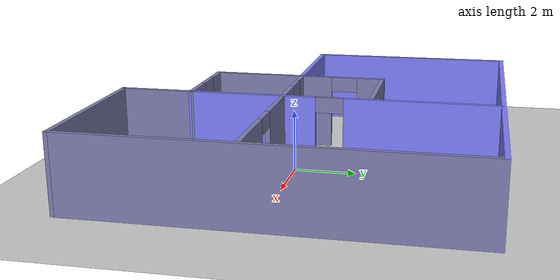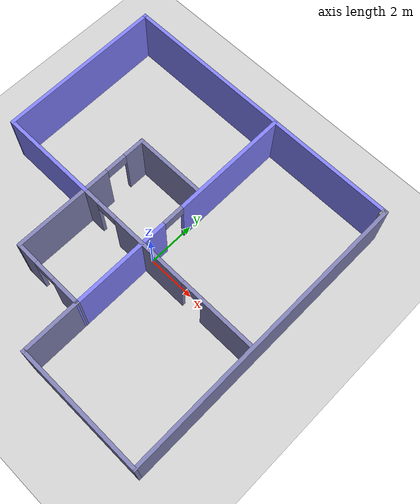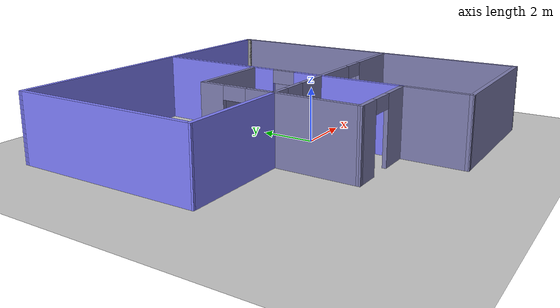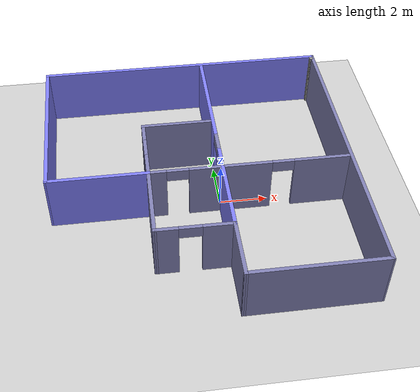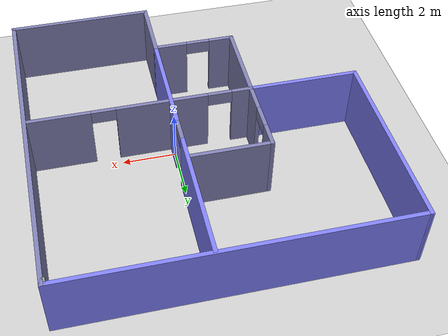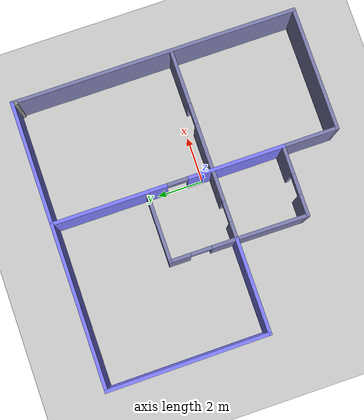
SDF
<sdf version="1.7">
 <world name="default">
  <model name="ground_plane">
   <static>1</static>
   <link name="link">
    <collision name="collision">
     <geometry><plane><normal>0 0 1</normal><size>100 100</size></plane></geometry>
     <surface>
      <contact><collide_bitmask>65535</collide_bitmask></contact>
      <friction><ode><mu>100</mu><mu2>50</mu2></ode></friction>
     </surface>
    </collision>
    <visual name="visual">
     <cast_shadows>0</cast_shadows>
     <geometry><plane><normal>0 0 1</normal><size>100 100</size></plane></geometry>
     <material>
      <script><uri>file://media/materials/scripts/gazebo.material</uri><name>Gazebo/Grey</name></script>
     </material>
    </visual>
   </link>
  </model>
  <model name="robotBuilding">
   <link name="Wall_15">
    <pose>0.000176 6.17768 0 0 -0 0</pose>
    <inertial>
     <mass>1</mass>
     <inertia><ixx>1</ixx><ixy>0</ixy><ixz>0</ixz><iyy>1</iyy><iyz>0</iyz><izz>1</izz></inertia>
    </inertial>
    <visual name="Wall_15_Visual">
     <pose>0 0 1.25 0 -0 0</pose>
     <geometry><box><size>12.5304 0.15 2.5</size></box></geometry>
     <material>
      <script><uri>file://media/materials/scripts/gazebo.material</uri><name>Gazebo/Grey</name></script>
      <ambient>0.5 0.5 1 1</ambient>
      <shader type="pixel"><normal_map>__default__</normal_map></shader>
      <diffuse>0.7 0.7 0.7 1</diffuse>
      <specular>0.01 0.01 0.01 1</specular>
      <emissive>0 0 0 1</emissive>
     </material>
     <meta><layer>0</layer></meta>
    </visual>
    <collision name="Wall_15_Collision">
     <pose>0 0 1.25 0 -0 0</pose>
     <geometry><box><size>12.5304 0.15 2.5</size></box></geometry>
     <surface>
      <friction>
       <ode><mu>1</mu><mu2>1</mu2><fdir1>0 0 0</fdir1><slip1>0</slip1><slip2>0</slip2></ode>
       <torsional>
        <coefficient>1</coefficient>
        <patch_radius>0</patch_radius>
        <surface_radius>0</surface_radius>
        <use_patch_radius>1</use_patch_radius>
        <ode><slip>0</slip></ode>
       </torsional>
      </friction>
      <bounce><restitution_coefficient>0</restitution_coefficient><threshold>1e+06</threshold></bounce>
      <contact>
       <collide_without_contact>0</collide_without_contact>
       <collide_without_contact_bitmask>1</collide_without_contact_bitmask>
       <collide_bitmask>1</collide_bitmask>
       <ode>
        <soft_cfm>0</soft_cfm>
        <soft_erp>0.2</soft_erp>
        <kp>1e+13</kp>
        <kd>1</kd>
        <max_vel>0.01</max_vel>
        <min_depth>0</min_depth>
       </ode>
       <bullet>
        <split_impulse>1</split_impulse>
        <split_impulse_penetration_threshold>-0.01</split_impulse_penetration_threshold>
        <soft_cfm>0</soft_cfm>
        <soft_erp>0.2</soft_erp>
        <kp>1e+13</kp>
        <kd>1</kd>
       </bullet>
      </contact>
     </surface>
    </collision>
   </link>
   <link name="Wall_16">
    <pose>6.19039 0.002678 0 0 0 -1.5708</pose>
    <inertial>
     <mass>1</mass>
     <inertia><ixx>1</ixx><ixy>0</ixy><ixz>0</ixz><iyy>1</iyy><iyz>0</iyz><izz>1</izz></inertia>
    </inertial>
    <visual name="Wall_16_Visual">
     <pose>0 0 1.25 0 -0 0</pose>
     <geometry><box><size>12.5 0.15 2.5</size></box></geometry>
     <material>
      <script><uri>file://media/materials/scripts/gazebo.material</uri><name>Gazebo/Grey</name></script>
      <ambient>0.5 0.5 1 1</ambient>
      <shader type="pixel"><normal_map>__default__</normal_map></shader>
      <diffuse>0.5 0.5 0.7 1</diffuse>
      <specular>0.01 0.01 0.01 1</specular>
      <emissive>0 0 0 1</emissive>
     </material>
     <meta><layer>0</layer></meta>
    </visual>
    <collision name="Wall_16_Collision">
     <pose>0 0 1.25 0 -0 0</pose>
     <geometry><box><size>12.5 0.15 2.5</size></box></geometry>
     <surface>
      <friction>
       <ode><mu>1</mu><mu2>1</mu2><fdir1>0 0 0</fdir1><slip1>0</slip1><slip2>0</slip2></ode>
       <torsional>
        <coefficient>1</coefficient>
        <patch_radius>0</patch_radius>
        <surface_radius>0</surface_radius>
        <use_patch_radius>1</use_patch_radius>
        <ode><slip>0</slip></ode>
       </torsional>
      </friction>
      <bounce><restitution_coefficient>0</restitution_coefficient><threshold>1e+06</threshold></bounce>
      <contact>
       <collide_without_contact>0</collide_without_contact>
       <collide_without_contact_bitmask>1</collide_without_contact_bitmask>
       <collide_bitmask>1</collide_bitmask>
       <ode>
        <soft_cfm>0</soft_cfm>
        <soft_erp>0.2</soft_erp>
        <kp>1e+13</kp>
        <kd>1</kd>
        <max_vel>0.01</max_vel>
        <min_depth>0</min_depth>
       </ode>
       <bullet>
        <split_impulse>1</split_impulse>
        <split_impulse_penetration_threshold>-0.01</split_impulse_penetration_threshold>
        <soft_cfm>0</soft_cfm>
        <soft_erp>0.2</soft_erp>
        <kp>1e+13</kp>
        <kd>1</kd>
       </bullet>
      </contact>
     </surface>
    </collision>
   </link>
   <link name="Wall_18">
    <pose>3.53731 -6.1752 0 0 0 -3.14051</pose>
    <inertial>
     <mass>1</mass>
     <inertia><ixx>1</ixx><ixy>0</ixy><ixz>0</ixz><iyy>1</iyy><iyz>0</iyz><izz>1</izz></inertia>
    </inertial>
    <visual name="Wall_18_Visual">
     <pose>0 0 1.25 0 -0 0</pose>
     <geometry><box><size>5.45623 0.15 2.5</size></box></geometry>
     <material>
      <script><uri>file://media/materials/scripts/gazebo.material</uri><name>Gazebo/Grey</name></script>
      <ambient>0.5 0.5 1 1</ambient>
      <shader type="pixel"><normal_map>__default__</normal_map></shader>
      <diffuse>0.5 0.5 0.7 1</diffuse>
      <specular>0.01 0.01 0.01 1</specular>
      <emissive>0 0 0 1</emissive>
     </material>
     <meta><layer>0</layer></meta>
    </visual>
    <collision name="Wall_18_Collision">
     <pose>0 0 1.25 0 -0 0</pose>
     <geometry><box><size>5.45623 0.15 2.5</size></box></geometry>
     <surface>
      <friction>
       <ode><mu>1</mu><mu2>1</mu2><fdir1>0 0 0</fdir1><slip1>0</slip1><slip2>0</slip2></ode>
       <torsional>
        <coefficient>1</coefficient>
        <patch_radius>0</patch_radius>
        <surface_radius>0</surface_radius>
        <use_patch_radius>1</use_patch_radius>
        <ode><slip>0</slip></ode>
       </torsional>
      </friction>
      <bounce><restitution_coefficient>0</restitution_coefficient><threshold>1e+06</threshold></bounce>
      <contact>
       <collide_without_contact>0</collide_without_contact>
       <collide_without_contact_bitmask>1</collide_without_contact_bitmask>
       <collide_bitmask>1</collide_bitmask>
       <ode>
        <soft_cfm>0</soft_cfm>
        <soft_erp>0.2</soft_erp>
        <kp>1e+13</kp>
        <kd>1</kd>
        <max_vel>0.01</max_vel>
        <min_depth>0</min_depth>
       </ode>
       <bullet>
        <split_impulse>1</split_impulse>
        <split_impulse_penetration_threshold>-0.01</split_impulse_penetration_threshold>
        <soft_cfm>0</soft_cfm>
        <soft_erp>0.2</soft_erp>
        <kp>1e+13</kp>
        <kd>1</kd>
       </bullet>
      </contact>
     </surface>
    </collision>
   </link>
   <link name="Wall_19">
    <pose>0.884227 -5.00307 0 0 -0 1.5708</pose>
    <inertial>
     <mass>1</mass>
     <inertia><ixx>1</ixx><ixy>0</ixy><ixz>0</ixz><iyy>1</iyy><iyz>0</iyz><izz>1</izz></inertia>
    </inertial>
    <visual name="Wall_19_Visual">
     <pose>0 0 1.25 0 -0 0</pose>
     <geometry><box><size>2.5 0.15 2.5</size></box></geometry>
     <material>
      <script><uri>file://media/materials/scripts/gazebo.material</uri><name>Gazebo/Grey</name></script>
      <ambient>0.5 0.5 1 1</ambient>
      <shader type="pixel"><normal_map>__default__</normal_map></shader>
      <diffuse>0.5 0.5 0.7 1</diffuse>
      <specular>0.01 0.01 0.01 1</specular>
      <emissive>0 0 0 1</emissive>
     </material>
     <meta><layer>0</layer></meta>
    </visual>
    <collision name="Wall_19_Collision">
     <pose>0 0 1.25 0 -0 0</pose>
     <geometry><box><size>2.5 0.15 2.5</size></box></geometry>
     <surface>
      <friction>
       <ode><mu>1</mu><mu2>1</mu2><fdir1>0 0 0</fdir1><slip1>0</slip1><slip2>0</slip2></ode>
       <torsional>
        <coefficient>1</coefficient>
        <patch_radius>0</patch_radius>
        <surface_radius>0</surface_radius>
        <use_patch_radius>1</use_patch_radius>
        <ode><slip>0</slip></ode>
       </torsional>
      </friction>
      <bounce><restitution_coefficient>0</restitution_coefficient><threshold>1e+06</threshold></bounce>
      <contact>
       <collide_without_contact>0</collide_without_contact>
       <collide_without_contact_bitmask>1</collide_without_contact_bitmask>
       <collide_bitmask>1</collide_bitmask>
       <ode>
        <soft_cfm>0</soft_cfm>
        <soft_erp>0.2</soft_erp>
        <kp>1e+13</kp>
        <kd>1</kd>
        <max_vel>0.01</max_vel>
        <min_depth>0</min_depth>
       </ode>
       <bullet>
        <split_impulse>1</split_impulse>
        <split_impulse_penetration_threshold>-0.01</split_impulse_penetration_threshold>
        <soft_cfm>0</soft_cfm>
        <soft_erp>0.2</soft_erp>
        <kp>1e+13</kp>
        <kd>1</kd>
       </bullet>
      </contact>
     </surface>
    </collision>
   </link>
   <link name="Wall_20">
    <pose>-0.623281 -3.82262 0 0 -0 3.13798</pose>
    <inertial>
     <mass>1</mass>
     <inertia><ixx>1</ixx><ixy>0</ixy><ixz>0</ixz><iyy>1</iyy><iyz>0</iyz><izz>1</izz></inertia>
    </inertial>
    <visual name="Wall_20_Visual_0">
     <pose>-0.937035 0 1.25 0 -0 0</pose>
     <geometry><box><size>1.291 0.15 2.5</size></box></geometry>
     <material>
      <script><uri>file://media/materials/scripts/gazebo.material</uri><name>Gazebo/Grey</name></script>
      <ambient>0.5 0.5 1 1</ambient>
      <shader type="pixel"><normal_map>__default__</normal_map></shader>
      <diffuse>0.5 0.5 0.7 1</diffuse>
      <specular>0 0.01 0.01 1</specular>
      <emissive>0 0 0 1</emissive>
     </material>
     <meta><layer>0</layer></meta>
    </visual>
    <visual name="Wall_20_Visual_1">
     <pose>1.0955 0 1.25 0 -0 0</pose>
     <geometry><box><size>0.97407 0.15 2.5</size></box></geometry>
     <material>
      <script><uri>file://media/materials/scripts/gazebo.material</uri><name>Gazebo/Grey</name></script>
      <ambient>0.5 0.5 1 1</ambient>
      <shader type="pixel"><normal_map>__default__</normal_map></shader>
      <diffuse>0.5 0.5 0.7 1</diffuse>
      <specular>0.01 0.01 0.01 1</specular>
      <emissive>0 0 0 1</emissive>
     </material>
     <meta><layer>0</layer></meta>
    </visual>
    <visual name="Wall_20_Visual_2">
     <pose>0.158466 0 2.25 0 -0 0</pose>
     <geometry><box><size>0.9 0.15 0.5</size></box></geometry>
     <material>
      <script><uri>file://media/materials/scripts/gazebo.material</uri><name>Gazebo/Grey</name></script>
      <ambient>0.5 0.5 1 1</ambient>
      <shader type="pixel"><normal_map>__default__</normal_map></shader>
      <diffuse>0.5 0.5 0.7 1</diffuse>
      <specular>0.01 0.01 0.01 1</specular>
      <emissive>0 0 0 1</emissive>
     </material>
     <meta><layer>0</layer></meta>
    </visual>
    <collision name="Wall_20_Collision_0">
     <pose>-0.937035 0 1.25 0 -0 0</pose>
     <geometry><box><size>1.291 0.15 2.5</size></box></geometry>
     <surface>
      <friction>
       <ode><mu>1</mu><mu2>1</mu2><fdir1>0 0 0</fdir1><slip1>0</slip1><slip2>0</slip2></ode>
       <torsional>
        <coefficient>1</coefficient>
        <patch_radius>0</patch_radius>
        <surface_radius>0</surface_radius>
        <use_patch_radius>1</use_patch_radius>
        <ode><slip>0</slip></ode>
       </torsional>
      </friction>
      <bounce><restitution_coefficient>0</restitution_coefficient><threshold>1e+06</threshold></bounce>
      <contact>
       <collide_without_contact>0</collide_without_contact>
       <collide_without_contact_bitmask>1</collide_without_contact_bitmask>
       <collide_bitmask>1</collide_bitmask>
       <ode>
        <soft_cfm>0</soft_cfm>
        <soft_erp>0.2</soft_erp>
        <kp>1e+13</kp>
        <kd>1</kd>
        <max_vel>0.01</max_vel>
        <min_depth>0</min_depth>
       </ode>
       <bullet>
        <split_impulse>1</split_impulse>
        <split_impulse_penetration_threshold>-0.01</split_impulse_penetration_threshold>
        <soft_cfm>0</soft_cfm>
        <soft_erp>0.2</soft_erp>
        <kp>1e+13</kp>
        <kd>1</kd>
       </bullet>
      </contact>
     </surface>
    </collision>
    <collision name="Wall_20_Collision_1">
     <pose>1.0955 0 1.25 0 -0 0</pose>
     <geometry><box><size>0.97407 0.15 2.5</size></box></geometry>
     <surface>
      <friction>
       <ode><mu>1</mu><mu2>1</mu2><fdir1>0 0 0</fdir1><slip1>0</slip1><slip2>0</slip2></ode>
       <torsional>
        <coefficient>1</coefficient>
        <patch_radius>0</patch_radius>
        <surface_radius>0</surface_radius>
        <use_patch_radius>1</use_patch_radius>
        <ode><slip>0</slip></ode>
       </torsional>
      </friction>
      <bounce><restitution_coefficient>0</restitution_coefficient><threshold>1e+06</threshold></bounce>
      <contact>
       <collide_without_contact>0</collide_without_contact>
       <collide_without_contact_bitmask>1</collide_without_contact_bitmask>
       <collide_bitmask>1</collide_bitmask>
       <ode>
        <soft_cfm>0</soft_cfm>
        <soft_erp>0.2</soft_erp>
        <kp>1e+13</kp>
        <kd>1</kd>
        <max_vel>0.01</max_vel>
        <min_depth>0</min_depth>
       </ode>
       <bullet>
        <split_impulse>1</split_impulse>
        <split_impulse_penetration_threshold>-0.01</split_impulse_penetration_threshold>
        <soft_cfm>0</soft_cfm>
        <soft_erp>0.2</soft_erp>
        <kp>1e+13</kp>
        <kd>1</kd>
       </bullet>
      </contact>
     </surface>
    </collision>
    <collision name="Wall_20_Collision_2">
     <pose>0.158466 0 2.25 0 -0 0</pose>
     <geometry><box><size>0.9 0.15 0.5</size></box></geometry>
     <surface>
      <friction>
       <ode><mu>1</mu><mu2>1</mu2><fdir1>0 0 0</fdir1><slip1>0</slip1><slip2>0</slip2></ode>
       <torsional>
        <coefficient>1</coefficient>
        <patch_radius>0</patch_radius>
        <surface_radius>0</surface_radius>
        <use_patch_radius>1</use_patch_radius>
        <ode><slip>0</slip></ode>
       </torsional>
      </friction>
      <bounce><restitution_coefficient>0</restitution_coefficient><threshold>1e+06</threshold></bounce>
      <contact>
       <collide_without_contact>0</collide_without_contact>
       <collide_without_contact_bitmask>1</collide_without_contact_bitmask>
       <collide_bitmask>1</collide_bitmask>
       <ode>
        <soft_cfm>0</soft_cfm>
        <soft_erp>0.2</soft_erp>
        <kp>1e+13</kp>
        <kd>1</kd>
        <max_vel>0.01</max_vel>
        <min_depth>0</min_depth>
       </ode>
       <bullet>
        <split_impulse>1</split_impulse>
        <split_impulse_penetration_threshold>-0.01</split_impulse_penetration_threshold>
        <soft_cfm>0</soft_cfm>
        <soft_erp>0.2</soft_erp>
        <kp>1e+13</kp>
        <kd>1</kd>
       </bullet>
      </contact>
     </surface>
    </collision>
   </link>
   <link name="Wall_21">
    <pose>-2.12004 -2.28807 0 0 -0 1.56377</pose>
    <inertial>
     <mass>1</mass>
     <inertia><ixx>1</ixx><ixy>0</ixy><ixz>0</ixz><iyy>1</iyy><iyz>0</iyz><izz>1</izz></inertia>
    </inertial>
    <visual name="Wall_21_Visual">
     <pose>0 0 1.25 0 -0 0</pose>
     <geometry><box><size>3.2083 0.15 2.5</size></box></geometry>
     <material>
      <script><uri>file://media/materials/scripts/gazebo.material</uri><name>Gazebo/Grey</name></script>
      <ambient>0.5 0.5 1 1</ambient>
      <shader type="pixel"><normal_map>__default__</normal_map></shader>
      <diffuse>0.5 0.5 0.7 1</diffuse>
      <specular>0.01 0.01 0.01 1</specular>
      <emissive>0 0 0 1</emissive>
     </material>
     <meta><layer>0</layer></meta>
    </visual>
    <collision name="Wall_21_Collision">
     <pose>0 0 1.25 0 -0 0</pose>
     <geometry><box><size>3.2083 0.15 2.5</size></box></geometry>
     <surface>
      <friction>
       <ode><mu>1</mu><mu2>1</mu2><fdir1>0 0 0</fdir1><slip1>0</slip1><slip2>0</slip2></ode>
       <torsional>
        <coefficient>1</coefficient>
        <patch_radius>0</patch_radius>
        <surface_radius>0</surface_radius>
        <use_patch_radius>1</use_patch_radius>
        <ode><slip>0</slip></ode>
       </torsional>
      </friction>
      <bounce><restitution_coefficient>0</restitution_coefficient><threshold>1e+06</threshold></bounce>
      <contact>
       <collide_without_contact>0</collide_without_contact>
       <collide_without_contact_bitmask>1</collide_without_contact_bitmask>
       <collide_bitmask>1</collide_bitmask>
       <ode>
        <soft_cfm>0</soft_cfm>
        <soft_erp>0.2</soft_erp>
        <kp>1e+13</kp>
        <kd>1</kd>
        <max_vel>0.01</max_vel>
        <min_depth>0</min_depth>
       </ode>
       <bullet>
        <split_impulse>1</split_impulse>
        <split_impulse_penetration_threshold>-0.01</split_impulse_penetration_threshold>
        <soft_cfm>0</soft_cfm>
        <soft_erp>0.2</soft_erp>
        <kp>1e+13</kp>
        <kd>1</kd>
       </bullet>
      </contact>
     </surface>
    </collision>
   </link>
   <link name="Wall_22">
    <pose>-4.12787 -0.758956 0 0 -0 3.14159</pose>
    <inertial>
     <mass>1</mass>
     <inertia><ixx>1</ixx><ixy>0</ixy><ixz>0</ixz><iyy>1</iyy><iyz>0</iyz><izz>1</izz></inertia>
    </inertial>
    <visual name="Wall_22_Visual">
     <pose>0 0 1.25 0 -0 0</pose>
     <geometry><box><size>4.18715 0.15 2.5</size></box></geometry>
     <material>
      <script><uri>file://media/materials/scripts/gazebo.material</uri><name>Gazebo/Grey</name></script>
      <ambient>0.5 0.5 1 1</ambient>
      <shader type="pixel"><normal_map>__default__</normal_map></shader>
      <diffuse>0.7 0.7 0.7 1</diffuse>
      <specular>0.01 0.01 0.01 1</specular>
      <emissive>0 0 0 1</emissive>
     </material>
     <meta><layer>0</layer></meta>
    </visual>
    <collision name="Wall_22_Collision">
     <pose>0 0 1.25 0 -0 0</pose>
     <geometry><box><size>4.18715 0.15 2.5</size></box></geometry>
     <surface>
      <friction>
       <ode><mu>1</mu><mu2>1</mu2><fdir1>0 0 0</fdir1><slip1>0</slip1><slip2>0</slip2></ode>
       <torsional>
        <coefficient>1</coefficient>
        <patch_radius>0</patch_radius>
        <surface_radius>0</surface_radius>
        <use_patch_radius>1</use_patch_radius>
        <ode><slip>0</slip></ode>
       </torsional>
      </friction>
      <bounce><restitution_coefficient>0</restitution_coefficient><threshold>1e+06</threshold></bounce>
      <contact>
       <collide_without_contact>0</collide_without_contact>
       <collide_without_contact_bitmask>1</collide_without_contact_bitmask>
       <collide_bitmask>1</collide_bitmask>
       <ode>
        <soft_cfm>0</soft_cfm>
        <soft_erp>0.2</soft_erp>
        <kp>1e+13</kp>
        <kd>1</kd>
        <max_vel>0.01</max_vel>
        <min_depth>0</min_depth>
       </ode>
       <bullet>
        <split_impulse>1</split_impulse>
        <split_impulse_penetration_threshold>-0.01</split_impulse_penetration_threshold>
        <soft_cfm>0</soft_cfm>
        <soft_erp>0.2</soft_erp>
        <kp>1e+13</kp>
        <kd>1</kd>
       </bullet>
      </contact>
     </surface>
    </collision>
   </link>
   <link name="Wall_23">
    <pose>-6.16824 2.70936 0 0 -0 1.57708</pose>
    <inertial>
     <mass>1</mass>
     <inertia><ixx>1</ixx><ixy>0</ixy><ixz>0</ixz><iyy>1</iyy><iyz>0</iyz><izz>1</izz></inertia>
    </inertial>
    <visual name="Wall_23_Visual">
     <pose>0 0 1.25 0 -0 0</pose>
     <geometry><box><size>7.08677 0.15 2.5</size></box></geometry>
     <material>
      <script><uri>file://media/materials/scripts/gazebo.material</uri><name>Gazebo/Grey</name></script>
      <ambient>0.5 0.5 1 1</ambient>
      <shader type="pixel"><normal_map>__default__</normal_map></shader>
      <diffuse>0.7 0.7 0.7 1</diffuse>
      <specular>0.01 0.01 0.01 1</specular>
      <emissive>0 0 0 1</emissive>
     </material>
     <meta><layer>0</layer></meta>
    </visual>
    <collision name="Wall_23_Collision">
     <pose>0 0 1.25 0 -0 0</pose>
     <geometry><box><size>7.08677 0.15 2.5</size></box></geometry>
     <surface>
      <friction>
       <ode><mu>1</mu><mu2>1</mu2><fdir1>0 0 0</fdir1><slip1>0</slip1><slip2>0</slip2></ode>
       <torsional>
        <coefficient>1</coefficient>
        <patch_radius>0</patch_radius>
        <surface_radius>0</surface_radius>
        <use_patch_radius>1</use_patch_radius>
        <ode><slip>0</slip></ode>
       </torsional>
      </friction>
      <bounce><restitution_coefficient>0</restitution_coefficient><threshold>1e+06</threshold></bounce>
      <contact>
       <collide_without_contact>0</collide_without_contact>
       <collide_without_contact_bitmask>1</collide_without_contact_bitmask>
       <collide_bitmask>1</collide_bitmask>
       <ode>
        <soft_cfm>0</soft_cfm>
        <soft_erp>0.2</soft_erp>
        <kp>1e+13</kp>
        <kd>1</kd>
        <max_vel>0.01</max_vel>
        <min_depth>0</min_depth>
       </ode>
       <bullet>
        <split_impulse>1</split_impulse>
        <split_impulse_penetration_threshold>-0.01</split_impulse_penetration_threshold>
        <soft_cfm>0</soft_cfm>
        <soft_erp>0.2</soft_erp>
        <kp>1e+13</kp>
        <kd>1</kd>
       </bullet>
      </contact>
     </surface>
    </collision>
   </link>
   <link name="Wall_26">
    <pose>0.884227 1.14693 0 0 -0 1.5708</pose>
    <inertial>
     <mass>1</mass>
     <inertia><ixx>1</ixx><ixy>0</ixy><ixz>0</ixz><iyy>1</iyy><iyz>0</iyz><izz>1</izz></inertia>
    </inertial>
    <visual name="Wall_26_Visual_0">
     <pose>-2.94215 0 1.25 0 -0 0</pose>
     <geometry><box><size>4.2157 0.15 2.5</size></box></geometry>
     <material>
      <script><uri>file://media/materials/scripts/gazebo.material</uri><name>Gazebo/Grey</name></script>
      <ambient>0.5 0.5 1 1</ambient>
      <shader type="pixel"><normal_map>__default__</normal_map></shader>
      <diffuse>0.7 0.7 0.7 1</diffuse>
      <specular>0.01 0.01 0.01 1</specular>
      <emissive>0 0 0 1</emissive>
     </material>
     <meta><layer>0</layer></meta>
    </visual>
    <visual name="Wall_26_Visual_1">
     <pose>2.55785 0 1.25 0 -0 0</pose>
     <geometry><box><size>4.9843 0.15 2.5</size></box></geometry>
     <material>
      <script><uri>file://media/materials/scripts/gazebo.material</uri><name>Gazebo/Grey</name></script>
      <ambient>0.5 0.5 1 1</ambient>
      <shader type="pixel"><normal_map>__default__</normal_map></shader>
      <diffuse>0.7 0.7 0.7 1</diffuse>
      <specular>0.01 0.01 0.01 1</specular>
      <emissive>0 0 0 1</emissive>
     </material>
     <meta><layer>0</layer></meta>
    </visual>
    <visual name="Wall_26_Visual_2">
     <pose>-0.384305 0 2.25 0 -0 0</pose>
     <geometry><box><size>0.9 0.15 0.5</size></box></geometry>
     <material>
      <script><uri>file://media/materials/scripts/gazebo.material</uri><name>Gazebo/Grey</name></script>
      <ambient>0.5 0.5 1 1</ambient>
      <shader type="pixel"><normal_map>__default__</normal_map></shader>
      <diffuse>0.5 0.5 0.7 1</diffuse>
      <specular>0.01 0.01 0.01 1</specular>
      <emissive>0 0 0 1</emissive>
     </material>
     <meta><layer>0</layer></meta>
    </visual>
    <collision name="Wall_26_Collision_0">
     <pose>-2.94215 0 1.25 0 -0 0</pose>
     <geometry><box><size>4.2157 0.15 2.5</size></box></geometry>
     <surface>
      <friction>
       <ode><mu>1</mu><mu2>1</mu2><fdir1>0 0 0</fdir1><slip1>0</slip1><slip2>0</slip2></ode>
       <torsional>
        <coefficient>1</coefficient>
        <patch_radius>0</patch_radius>
        <surface_radius>0</surface_radius>
        <use_patch_radius>1</use_patch_radius>
        <ode><slip>0</slip></ode>
       </torsional>
      </friction>
      <bounce><restitution_coefficient>0</restitution_coefficient><threshold>1e+06</threshold></bounce>
      <contact>
       <collide_without_contact>0</collide_without_contact>
       <collide_without_contact_bitmask>1</collide_without_contact_bitmask>
       <collide_bitmask>1</collide_bitmask>
       <ode>
        <soft_cfm>0</soft_cfm>
        <soft_erp>0.2</soft_erp>
        <kp>1e+13</kp>
        <kd>1</kd>
        <max_vel>0.01</max_vel>
        <min_depth>0</min_depth>
       </ode>
       <bullet>
        <split_impulse>1</split_impulse>
        <split_impulse_penetration_threshold>-0.01</split_impulse_penetration_threshold>
        <soft_cfm>0</soft_cfm>
        <soft_erp>0.2</soft_erp>
        <kp>1e+13</kp>
        <kd>1</kd>
       </bullet>
      </contact>
     </surface>
    </collision>
    <collision name="Wall_26_Collision_1">
     <pose>2.55785 0 1.25 0 -0 0</pose>
     <geometry><box><size>4.9843 0.15 2.5</size></box></geometry>
     <surface>
      <friction>
       <ode><mu>1</mu><mu2>1</mu2><fdir1>0 0 0</fdir1><slip1>0</slip1><slip2>0</slip2></ode>
       <torsional>
        <coefficient>1</coefficient>
        <patch_radius>0</patch_radius>
        <surface_radius>0</surface_radius>
        <use_patch_radius>1</use_patch_radius>
        <ode><slip>0</slip></ode>
       </torsional>
      </friction>
      <bounce><restitution_coefficient>0</restitution_coefficient><threshold>1e+06</threshold></bounce>
      <contact>
       <collide_without_contact>0</collide_without_contact>
       <collide_without_contact_bitmask>1</collide_without_contact_bitmask>
       <collide_bitmask>1</collide_bitmask>
       <ode>
        <soft_cfm>0</soft_cfm>
        <soft_erp>0.2</soft_erp>
        <kp>1e+13</kp>
        <kd>1</kd>
        <max_vel>0.01</max_vel>
        <min_depth>0</min_depth>
       </ode>
       <bullet>
        <split_impulse>1</split_impulse>
        <split_impulse_penetration_threshold>-0.01</split_impulse_penetration_threshold>
        <soft_cfm>0</soft_cfm>
        <soft_erp>0.2</soft_erp>
        <kp>1e+13</kp>
        <kd>1</kd>
       </bullet>
      </contact>
     </surface>
    </collision>
    <collision name="Wall_26_Collision_2">
     <pose>-0.384305 0 2.25 0 -0 0</pose>
     <geometry><box><size>0.9 0.15 0.5</size></box></geometry>
     <surface>
      <friction>
       <ode><mu>1</mu><mu2>1</mu2><fdir1>0 0 0</fdir1><slip1>0</slip1><slip2>0</slip2></ode>
       <torsional>
        <coefficient>1</coefficient>
        <patch_radius>0</patch_radius>
        <surface_radius>0</surface_radius>
        <use_patch_radius>1</use_patch_radius>
        <ode><slip>0</slip></ode>
       </torsional>
      </friction>
      <bounce><restitution_coefficient>0</restitution_coefficient><threshold>1e+06</threshold></bounce>
      <contact>
       <collide_without_contact>0</collide_without_contact>
       <collide_without_contact_bitmask>1</collide_without_contact_bitmask>
       <collide_bitmask>1</collide_bitmask>
       <ode>
        <soft_cfm>0</soft_cfm>
        <soft_erp>0.2</soft_erp>
        <kp>1e+13</kp>
        <kd>1</kd>
        <max_vel>0.01</max_vel>
        <min_depth>0</min_depth>
       </ode>
       <bullet>
        <split_impulse>1</split_impulse>
        <split_impulse_penetration_threshold>-0.01</split_impulse_penetration_threshold>
        <soft_cfm>0</soft_cfm>
        <soft_erp>0.2</soft_erp>
        <kp>1e+13</kp>
        <kd>1</kd>
       </bullet>
      </contact>
     </surface>
    </collision>
   </link>
   <link name="Wall_30">
    <pose>-2.1093 0.666044 0 0 -0 1.5708</pose>
    <inertial>
     <mass>1</mass>
     <inertia><ixx>1</ixx><ixy>0</ixy><ixz>0</ixz><iyy>1</iyy><iyz>0</iyz><izz>1</izz></inertia>
    </inertial>
    <visual name="Wall_30_Visual_0">
     <pose>-0.926708 0 1.25 0 -0 0</pose>
     <geometry><box><size>1.14658 0.15 2.5</size></box></geometry>
     <material>
      <script><uri>file://media/materials/scripts/gazebo.material</uri><name>Gazebo/Grey</name></script>
      <ambient>0.5 0.5 1 1</ambient>
      <shader type="pixel"><normal_map>__default__</normal_map></shader>
      <diffuse>0.5 0.5 0.7 1</diffuse>
      <specular>0.01 0.01 0.01 1</specular>
      <emissive>0 0 0 1</emissive>
     </material>
     <meta><layer>0</layer></meta>
    </visual>
    <visual name="Wall_30_Visual_1">
     <pose>1.02329 0 1.25 0 -0 0</pose>
     <geometry><box><size>0.953416 0.15 2.5</size></box></geometry>
     <material>
      <script><uri>file://media/materials/scripts/gazebo.material</uri><name>Gazebo/Grey</name></script>
      <ambient>0.5 0.5 1 1</ambient>
      <shader type="pixel"><normal_map>__default__</normal_map></shader>
      <diffuse>0.5 0.5 0.7 1</diffuse>
      <specular>0.01 0.01 0.01 1</specular>
      <emissive>0 0 0 1</emissive>
     </material>
     <meta><layer>0</layer></meta>
    </visual>
    <visual name="Wall_30_Visual_2">
     <pose>0.096584 0 2.25 0 -0 0</pose>
     <geometry><box><size>0.9 0.15 0.5</size></box></geometry>
     <material>
      <script><uri>file://media/materials/scripts/gazebo.material</uri><name>Gazebo/Grey</name></script>
      <ambient>0.5 0.5 1 1</ambient>
      <shader type="pixel"><normal_map>__default__</normal_map></shader>
      <diffuse>0.5 0.5 0.7 1</diffuse>
      <specular>0.01 0.01 0.01 1</specular>
      <emissive>0 0 0 1</emissive>
     </material>
     <meta><layer>0</layer></meta>
    </visual>
    <collision name="Wall_30_Collision_0">
     <pose>-0.926708 0 1.25 0 -0 0</pose>
     <geometry><box><size>1.14658 0.15 2.5</size></box></geometry>
     <surface>
      <friction>
       <ode><mu>1</mu><mu2>1</mu2><fdir1>0 0 0</fdir1><slip1>0</slip1><slip2>0</slip2></ode>
       <torsional>
        <coefficient>1</coefficient>
        <patch_radius>0</patch_radius>
        <surface_radius>0</surface_radius>
        <use_patch_radius>1</use_patch_radius>
        <ode><slip>0</slip></ode>
       </torsional>
      </friction>
      <bounce><restitution_coefficient>0</restitution_coefficient><threshold>1e+06</threshold></bounce>
      <contact>
       <collide_without_contact>0</collide_without_contact>
       <collide_without_contact_bitmask>1</collide_without_contact_bitmask>
       <collide_bitmask>1</collide_bitmask>
       <ode>
        <soft_cfm>0</soft_cfm>
        <soft_erp>0.2</soft_erp>
        <kp>1e+13</kp>
        <kd>1</kd>
        <max_vel>0.01</max_vel>
        <min_depth>0</min_depth>
       </ode>
       <bullet>
        <split_impulse>1</split_impulse>
        <split_impulse_penetration_threshold>-0.01</split_impulse_penetration_threshold>
        <soft_cfm>0</soft_cfm>
        <soft_erp>0.2</soft_erp>
        <kp>1e+13</kp>
        <kd>1</kd>
       </bullet>
      </contact>
     </surface>
    </collision>
    <collision name="Wall_30_Collision_1">
     <pose>1.02329 0 1.25 0 -0 0</pose>
     <geometry><box><size>0.953416 0.15 2.5</size></box></geometry>
     <surface>
      <friction>
       <ode><mu>1</mu><mu2>1</mu2><fdir1>0 0 0</fdir1><slip1>0</slip1><slip2>0</slip2></ode>
       <torsional>
        <coefficient>1</coefficient>
        <patch_radius>0</patch_radius>
        <surface_radius>0</surface_radius>
        <use_patch_radius>1</use_patch_radius>
        <ode><slip>0</slip></ode>
       </torsional>
      </friction>
      <bounce><restitution_coefficient>0</restitution_coefficient><threshold>1e+06</threshold></bounce>
      <contact>
       <collide_without_contact>0</collide_without_contact>
       <collide_without_contact_bitmask>1</collide_without_contact_bitmask>
       <collide_bitmask>1</collide_bitmask>
       <ode>
        <soft_cfm>0</soft_cfm>
        <soft_erp>0.2</soft_erp>
        <kp>1e+13</kp>
        <kd>1</kd>
        <max_vel>0.01</max_vel>
        <min_depth>0</min_depth>
       </ode>
       <bullet>
        <split_impulse>1</split_impulse>
        <split_impulse_penetration_threshold>-0.01</split_impulse_penetration_threshold>
        <soft_cfm>0</soft_cfm>
        <soft_erp>0.2</soft_erp>
        <kp>1e+13</kp>
        <kd>1</kd>
       </bullet>
      </contact>
     </surface>
    </collision>
    <collision name="Wall_30_Collision_2">
     <pose>0.096584 0 2.25 0 -0 0</pose>
     <geometry><box><size>0.9 0.15 0.5</size></box></geometry>
     <surface>
      <friction>
       <ode><mu>1</mu><mu2>1</mu2><fdir1>0 0 0</fdir1><slip1>0</slip1><slip2>0</slip2></ode>
       <torsional>
        <coefficient>1</coefficient>
        <patch_radius>0</patch_radius>
        <surface_radius>0</surface_radius>
        <use_patch_radius>1</use_patch_radius>
        <ode><slip>0</slip></ode>
       </torsional>
      </friction>
      <bounce><restitution_coefficient>0</restitution_coefficient><threshold>1e+06</threshold></bounce>
      <contact>
       <collide_without_contact>0</collide_without_contact>
       <collide_without_contact_bitmask>1</collide_without_contact_bitmask>
       <collide_bitmask>1</collide_bitmask>
       <ode>
        <soft_cfm>0</soft_cfm>
        <soft_erp>0.2</soft_erp>
        <kp>1e+13</kp>
        <kd>1</kd>
        <max_vel>0.01</max_vel>
        <min_depth>0</min_depth>
       </ode>
       <bullet>
        <split_impulse>1</split_impulse>
        <split_impulse_penetration_threshold>-0.01</split_impulse_penetration_threshold>
        <soft_cfm>0</soft_cfm>
        <soft_erp>0.2</soft_erp>
        <kp>1e+13</kp>
        <kd>1</kd>
       </bullet>
      </contact>
     </surface>
    </collision>
   </link>
   <link name="Wall_31">
    <pose>-0.684296 2.09104 0 0 -0 0</pose>
    <inertial>
     <mass>1</mass>
     <inertia><ixx>1</ixx><ixy>0</ixy><ixz>0</ixz><iyy>1</iyy><iyz>0</iyz><izz>1</izz></inertia>
    </inertial>
    <visual name="Wall_31_Visual">
     <pose>0 0 1.25 0 -0 0</pose>
     <geometry><box><size>3 0.15 2.5</size></box></geometry>
     <material>
      <script><uri>file://media/materials/scripts/gazebo.material</uri><name>Gazebo/Grey</name></script>
      <ambient>0.5 0.5 1 1</ambient>
      <shader type="pixel"><normal_map>__default__</normal_map></shader>
      <diffuse>0.5 0.5 0.7 1</diffuse>
      <specular>0.01 0.01 0.01 1</specular>
      <emissive>0 0 0 1</emissive>
     </material>
     <meta><layer>0</layer></meta>
    </visual>
    <collision name="Wall_31_Collision">
     <pose>0 0 1.25 0 -0 0</pose>
     <geometry><box><size>3 0.15 2.5</size></box></geometry>
     <surface>
      <friction>
       <ode><mu>1</mu><mu2>1</mu2><fdir1>0 0 0</fdir1><slip1>0</slip1><slip2>0</slip2></ode>
       <torsional>
        <coefficient>1</coefficient>
        <patch_radius>0</patch_radius>
        <surface_radius>0</surface_radius>
        <use_patch_radius>1</use_patch_radius>
        <ode><slip>0</slip></ode>
       </torsional>
      </friction>
      <bounce><restitution_coefficient>0</restitution_coefficient><threshold>1e+06</threshold></bounce>
      <contact>
       <collide_without_contact>0</collide_without_contact>
       <collide_without_contact_bitmask>1</collide_without_contact_bitmask>
       <collide_bitmask>1</collide_bitmask>
       <ode>
        <soft_cfm>0</soft_cfm>
        <soft_erp>0.2</soft_erp>
        <kp>1e+13</kp>
        <kd>1</kd>
        <max_vel>0.01</max_vel>
        <min_depth>0</min_depth>
       </ode>
       <bullet>
        <split_impulse>1</split_impulse>
        <split_impulse_penetration_threshold>-0.01</split_impulse_penetration_threshold>
        <soft_cfm>0</soft_cfm>
        <soft_erp>0.2</soft_erp>
        <kp>1e+13</kp>
        <kd>1</kd>
       </bullet>
      </contact>
     </surface>
    </collision>
   </link>
   <link name="Wall_33">
    <pose>1.9657 -0.758956 0 0 -0 0</pose>
    <inertial>
     <mass>1</mass>
     <inertia><ixx>1</ixx><ixy>0</ixy><ixz>0</ixz><iyy>1</iyy><iyz>0</iyz><izz>1</izz></inertia>
    </inertial>
    <visual name="Wall_33_Visual_0">
     <pose>-3.7496 0 1.25 0 -0 0</pose>
     <geometry><box><size>0.800798 0.15 2.5</size></box></geometry>
     <material>
      <script><uri>file://media/materials/scripts/gazebo.material</uri><name>Gazebo/Grey</name></script>
      <ambient>0.5 0.5 1 1</ambient>
      <shader type="pixel"><normal_map>__default__</normal_map></shader>
      <diffuse>0.5 0.5 0.7 1</diffuse>
      <specular>0.01 0.01 0.01 1</specular>
      <emissive>0 0 0 1</emissive>
     </material>
     <meta><layer>0</layer></meta>
    </visual>
    <visual name="Wall_33_Visual_1">
     <pose>-0.751376 0 1.25 0 -0 0</pose>
     <geometry><box><size>3.39565 0.15 2.5</size></box></geometry>
     <material>
      <script><uri>file://media/materials/scripts/gazebo.material</uri><name>Gazebo/Grey</name></script>
      <ambient>0.5 0.5 1 1</ambient>
      <shader type="pixel"><normal_map>__default__</normal_map></shader>
      <diffuse>0.5 0.5 0.7 1</diffuse>
      <specular>0.01 0.01 0.01 1</specular>
      <emissive>0 0 0 1</emissive>
     </material>
     <meta><layer>0</layer></meta>
    </visual>
    <visual name="Wall_33_Visual_2">
     <pose>2.99823 0 1.25 0 -0 0</pose>
     <geometry><box><size>2.30355 0.15 2.5</size></box></geometry>
     <material>
      <script><uri>file://media/materials/scripts/gazebo.material</uri><name>Gazebo/Grey</name></script>
      <ambient>0.5 0.5 1 1</ambient>
      <shader type="pixel"><normal_map>__default__</normal_map></shader>
      <diffuse>0.5 0.5 0.7 1</diffuse>
      <specular>0.01 0.01 0.01 1</specular>
      <emissive>0 0 0 1</emissive>
     </material>
     <meta><layer>0</layer></meta>
    </visual>
    <visual name="Wall_33_Visual_3">
     <pose>-2.8992 0 2.25 0 -0 0</pose>
     <geometry><box><size>0.9 0.15 0.5</size></box></geometry>
     <material>
      <script><uri>file://media/materials/scripts/gazebo.material</uri><name>Gazebo/Grey</name></script>
      <ambient>0.5 0.5 1 1</ambient>
      <shader type="pixel"><normal_map>__default__</normal_map></shader>
      <diffuse>0.5 0.5 0.7 1</diffuse>
      <specular>0.01 0.01 0.01 1</specular>
      <emissive>0 0 0 1</emissive>
     </material>
     <meta><layer>0</layer></meta>
    </visual>
    <visual name="Wall_33_Visual_4">
     <pose>1.39645 0 2.25 0 -0 0</pose>
     <geometry><box><size>0.9 0.15 0.5</size></box></geometry>
     <material>
      <script><uri>file://media/materials/scripts/gazebo.material</uri><name>Gazebo/Grey</name></script>
      <ambient>0.5 0.5 1 1</ambient>
      <shader type="pixel"><normal_map>__default__</normal_map></shader>
      <diffuse>0.5 0.5 0.7 1</diffuse>
      <specular>0.01 0.01 0.01 1</specular>
      <emissive>0 0 0 1</emissive>
     </material>
     <meta><layer>0</layer></meta>
    </visual>
    <collision name="Wall_33_Collision_0">
     <pose>-3.7496 0 1.25 0 -0 0</pose>
     <geometry><box><size>0.800798 0.15 2.5</size></box></geometry>
     <surface>
      <friction>
       <ode><mu>1</mu><mu2>1</mu2><fdir1>0 0 0</fdir1><slip1>0</slip1><slip2>0</slip2></ode>
       <torsional>
        <coefficient>1</coefficient>
        <patch_radius>0</patch_radius>
        <surface_radius>0</surface_radius>
        <use_patch_radius>1</use_patch_radius>
        <ode><slip>0</slip></ode>
       </torsional>
      </friction>
      <bounce><restitution_coefficient>0</restitution_coefficient><threshold>1e+06</threshold></bounce>
      <contact>
       <collide_without_contact>0</collide_without_contact>
       <collide_without_contact_bitmask>1</collide_without_contact_bitmask>
       <collide_bitmask>1</collide_bitmask>
       <ode>
        <soft_cfm>0</soft_cfm>
        <soft_erp>0.2</soft_erp>
        <kp>1e+13</kp>
        <kd>1</kd>
        <max_vel>0.01</max_vel>
        <min_depth>0</min_depth>
       </ode>
       <bullet>
        <split_impulse>1</split_impulse>
        <split_impulse_penetration_threshold>-0.01</split_impulse_penetration_threshold>
        <soft_cfm>0</soft_cfm>
        <soft_erp>0.2</soft_erp>
        <kp>1e+13</kp>
        <kd>1</kd>
       </bullet>
      </contact>
     </surface>
    </collision>
    <collision name="Wall_33_Collision_1">
     <pose>-0.751376 0 1.25 0 -0 0</pose>
     <geometry><box><size>3.39565 0.15 2.5</size></box></geometry>
     <surface>
      <friction>
       <ode><mu>1</mu><mu2>1</mu2><fdir1>0 0 0</fdir1><slip1>0</slip1><slip2>0</slip2></ode>
       <torsional>
        <coefficient>1</coefficient>
        <patch_radius>0</patch_radius>
        <surface_radius>0</surface_radius>
        <use_patch_radius>1</use_patch_radius>
        <ode><slip>0</slip></ode>
       </torsional>
      </friction>
      <bounce><restitution_coefficient>0</restitution_coefficient><threshold>1e+06</threshold></bounce>
      <contact>
       <collide_without_contact>0</collide_without_contact>
       <collide_without_contact_bitmask>1</collide_without_contact_bitmask>
       <collide_bitmask>1</collide_bitmask>
       <ode>
        <soft_cfm>0</soft_cfm>
        <soft_erp>0.2</soft_erp>
        <kp>1e+13</kp>
        <kd>1</kd>
        <max_vel>0.01</max_vel>
        <min_depth>0</min_depth>
       </ode>
       <bullet>
        <split_impulse>1</split_impulse>
        <split_impulse_penetration_threshold>-0.01</split_impulse_penetration_threshold>
        <soft_cfm>0</soft_cfm>
        <soft_erp>0.2</soft_erp>
        <kp>1e+13</kp>
        <kd>1</kd>
       </bullet>
      </contact>
     </surface>
    </collision>
    <collision name="Wall_33_Collision_2">
     <pose>2.99823 0 1.25 0 -0 0</pose>
     <geometry><box><size>2.30355 0.15 2.5</size></box></geometry>
     <surface>
      <friction>
       <ode><mu>1</mu><mu2>1</mu2><fdir1>0 0 0</fdir1><slip1>0</slip1><slip2>0</slip2></ode>
       <torsional>
        <coefficient>1</coefficient>
        <patch_radius>0</patch_radius>
        <surface_radius>0</surface_radius>
        <use_patch_radius>1</use_patch_radius>
        <ode><slip>0</slip></ode>
       </torsional>
      </friction>
      <bounce><restitution_coefficient>0</restitution_coefficient><threshold>1e+06</threshold></bounce>
      <contact>
       <collide_without_contact>0</collide_without_contact>
       <collide_without_contact_bitmask>1</collide_without_contact_bitmask>
       <collide_bitmask>1</collide_bitmask>
       <ode>
        <soft_cfm>0</soft_cfm>
        <soft_erp>0.2</soft_erp>
        <kp>1e+13</kp>
        <kd>1</kd>
        <max_vel>0.01</max_vel>
        <min_depth>0</min_depth>
       </ode>
       <bullet>
        <split_impulse>1</split_impulse>
        <split_impulse_penetration_threshold>-0.01</split_impulse_penetration_threshold>
        <soft_cfm>0</soft_cfm>
        <soft_erp>0.2</soft_erp>
        <kp>1e+13</kp>
        <kd>1</kd>
       </bullet>
      </contact>
     </surface>
    </collision>
    <collision name="Wall_33_Collision_4">
     <pose>1.39645 0 2.25 0 -0 0</pose>
     <geometry><box><size>0.9 0.15 0.5</size></box></geometry>
     <surface>
      <friction>
       <ode><mu>1</mu><mu2>1</mu2><fdir1>0 0 0</fdir1><slip1>0</slip1><slip2>0</slip2></ode>
       <torsional>
        <coefficient>1</coefficient>
        <patch_radius>0</patch_radius>
        <surface_radius>0</surface_radius>
        <use_patch_radius>1</use_patch_radius>
        <ode><slip>0</slip></ode>
       </torsional>
      </friction>
      <bounce><restitution_coefficient>0</restitution_coefficient><threshold>1e+06</threshold></bounce>
      <contact>
       <collide_without_contact>0</collide_without_contact>
       <collide_without_contact_bitmask>1</collide_without_contact_bitmask>
       <collide_bitmask>1</collide_bitmask>
       <ode>
        <soft_cfm>0</soft_cfm>
        <soft_erp>0.2</soft_erp>
        <kp>1e+13</kp>
        <kd>1</kd>
        <max_vel>0.01</max_vel>
        <min_depth>0</min_depth>
       </ode>
       <bullet>
        <split_impulse>1</split_impulse>
        <split_impulse_penetration_threshold>-0.01</split_impulse_penetration_threshold>
        <soft_cfm>0</soft_cfm>
        <soft_erp>0.2</soft_erp>
        <kp>1e+13</kp>
        <kd>1</kd>
       </bullet>
      </contact>
     </surface>
    </collision>
    <collision name="Wall_33_Collision_3">
     <pose>-2.8992 0 2.25 0 -0 0</pose>
     <geometry><box><size>0.9 0.15 0.5</size></box></geometry>
     <surface>
      <friction>
       <ode><mu>1</mu><mu2>1</mu2><fdir1>0 0 0</fdir1><slip1>0</slip1><slip2>0</slip2></ode>
       <torsional>
        <coefficient>1</coefficient>
        <patch_radius>0</patch_radius>
        <surface_radius>0</surface_radius>
        <use_patch_radius>1</use_patch_radius>
        <ode><slip>0</slip></ode>
       </torsional>
      </friction>
      <bounce><restitution_coefficient>0</restitution_coefficient><threshold>1e+06</threshold></bounce>
      <contact>
       <collide_without_contact>0</collide_without_contact>
       <collide_without_contact_bitmask>1</collide_without_contact_bitmask>
       <collide_bitmask>1</collide_bitmask>
       <ode>
        <soft_cfm>0</soft_cfm>
        <soft_erp>0.2</soft_erp>
        <kp>1e+13</kp>
        <kd>1</kd>
        <max_vel>0.01</max_vel>
        <min_depth>0</min_depth>
       </ode>
       <bullet>
        <split_impulse>1</split_impulse>
        <split_impulse_penetration_threshold>-0.01</split_impulse_penetration_threshold>
        <soft_cfm>0</soft_cfm>
        <soft_erp>0.2</soft_erp>
        <kp>1e+13</kp>
        <kd>1</kd>
       </bullet>
      </contact>
     </surface>
    </collision>
   </link>
   <link name="Wall_7">
    <pose>6.12264 6.0252 0 0 -0 0</pose>
    <visual name="Wall_7_Visual">
     <pose>0 0 1.25 0 -0 0</pose>
     <geometry><box><size>0.15 0.15 2.5</size></box></geometry>
     <material>
      <script><uri>file://media/materials/scripts/gazebo.material</uri><name>Gazebo/Grey</name></script>
      <ambient>1 1 1 1</ambient>
      <shader type="pixel"/>
     </material>
     <meta><layer>0</layer></meta>
    </visual>
    <collision name="Wall_7_Collision">
     <pose>0 0 1.25 0 -0 0</pose>
     <geometry><box><size>0.15 0.15 2.5</size></box></geometry>
     <surface>
      <friction>
       <ode><mu>1</mu><mu2>1</mu2><fdir1>0 0 0</fdir1><slip1>0</slip1><slip2>0</slip2></ode>
       <torsional>
        <coefficient>1</coefficient>
        <patch_radius>0</patch_radius>
        <surface_radius>0</surface_radius>
        <use_patch_radius>1</use_patch_radius>
        <ode><slip>0</slip></ode>
       </torsional>
      </friction>
      <bounce><restitution_coefficient>0</restitution_coefficient><threshold>1e+06</threshold></bounce>
      <contact>
       <collide_without_contact>0</collide_without_contact>
       <collide_without_contact_bitmask>1</collide_without_contact_bitmask>
       <collide_bitmask>1</collide_bitmask>
       <ode>
        <soft_cfm>0</soft_cfm>
        <soft_erp>0.2</soft_erp>
        <kp>1e+13</kp>
        <kd>1</kd>
        <max_vel>0.01</max_vel>
        <min_depth>0</min_depth>
       </ode>
       <bullet>
        <split_impulse>1</split_impulse>
        <split_impulse_penetration_threshold>-0.01</split_impulse_penetration_threshold>
        <soft_cfm>0</soft_cfm>
        <soft_erp>0.2</soft_erp>
        <kp>1e+13</kp>
        <kd>1</kd>
       </bullet>
      </contact>
     </surface>
    </collision>
   </link>
   <link name="Wall_8">
    <pose>6.12264 6.0752 0 0 -0 1.5708</pose>
    <visual name="Wall_8_Visual">
     <pose>0 0 1.25 0 -0 0</pose>
     <geometry><box><size>0.25 0.15 2.5</size></box></geometry>
     <material>
      <script><uri>file://media/materials/scripts/gazebo.material</uri><name>Gazebo/Grey</name></script>
      <ambient>1 1 1 1</ambient>
      <shader type="pixel"/>
     </material>
     <meta><layer>0</layer></meta>
    </visual>
    <collision name="Wall_8_Collision">
     <pose>0 0 1.25 0 -0 0</pose>
     <geometry><box><size>0.25 0.15 2.5</size></box></geometry>
     <surface>
      <friction>
       <ode><mu>1</mu><mu2>1</mu2><fdir1>0 0 0</fdir1><slip1>0</slip1><slip2>0</slip2></ode>
       <torsional>
        <coefficient>1</coefficient>
        <patch_radius>0</patch_radius>
        <surface_radius>0</surface_radius>
        <use_patch_radius>1</use_patch_radius>
        <ode><slip>0</slip></ode>
       </torsional>
      </friction>
      <bounce><restitution_coefficient>0</restitution_coefficient><threshold>1e+06</threshold></bounce>
      <contact>
       <collide_without_contact>0</collide_without_contact>
       <collide_without_contact_bitmask>1</collide_without_contact_bitmask>
       <collide_bitmask>1</collide_bitmask>
       <ode>
        <soft_cfm>0</soft_cfm>
        <soft_erp>0.2</soft_erp>
        <kp>1e+13</kp>
        <kd>1</kd>
        <max_vel>0.01</max_vel>
        <min_depth>0</min_depth>
       </ode>
       <bullet>
        <split_impulse>1</split_impulse>
        <split_impulse_penetration_threshold>-0.01</split_impulse_penetration_threshold>
        <soft_cfm>0</soft_cfm>
        <soft_erp>0.2</soft_erp>
        <kp>1e+13</kp>
        <kd>1</kd>
       </bullet>
      </contact>
     </surface>
    </collision>
   </link>
   <static>1</static>
   <pose>-0.866917 0.383637 0 0 -0 0</pose>
  </model>
 </world>
</sdf>
